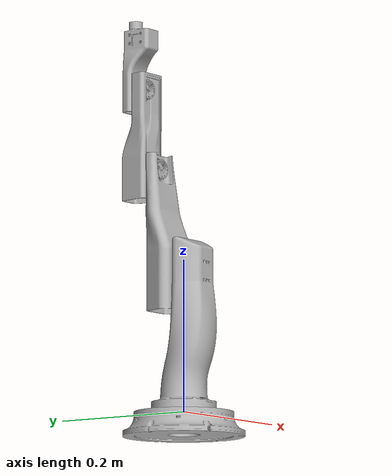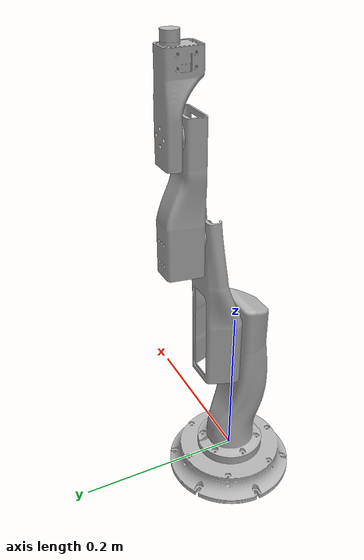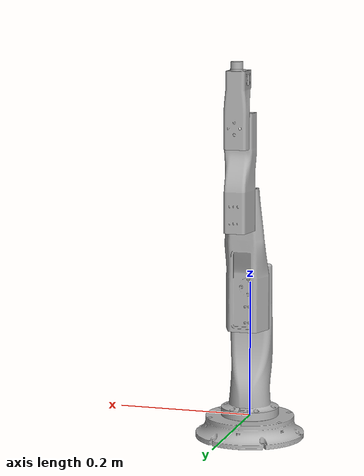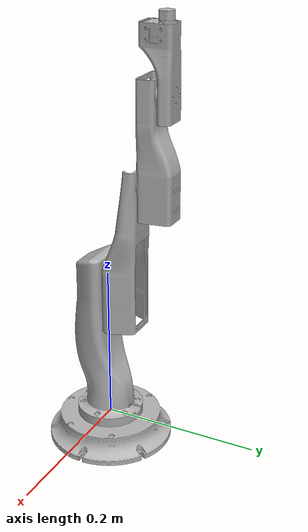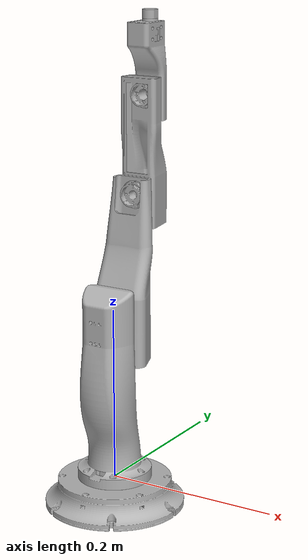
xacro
<?xml version="1.0" ?>
<robot name="myrobot" xmlns:xacro="http://www.ros.org/wiki/xacro">

<xacro:include filename="$(find myrobot_description)/urdf/materials.xacro" />
<xacro:include filename="$(find myrobot_description)/urdf/myrobot.trans" />
<xacro:include filename="$(find myrobot_description)/urdf/myrobot.gazebo" />
<link name="base_link">
  <inertial>
    <origin xyz="-2.412129279155798e-05 -6.726389239787194e-09 -0.01650625609341484" rpy="0 0 0"/>
    <mass value="2.9089077355455877"/>
    <inertia ixx="0.004719" iyy="0.004722" izz="0.00889" ixy="0.0" iyz="-0.0" ixz="0.0"/>
  </inertial>
  <visual>
    <origin xyz="0 0 0" rpy="0 0 0"/>
    <geometry>
      <mesh filename="file://$(find myrobot_description)/meshes/base_link.stl" scale="0.001 0.001 0.001"/>
    </geometry>
    <material name="silver"/>
  </visual>
  <collision>
    <origin xyz="0 0 0" rpy="0 0 0"/>
    <geometry>
      <mesh filename="file://$(find myrobot_description)/meshes/base_link.stl" scale="0.001 0.001 0.001"/>
    </geometry>
  </collision>
</link>

<link name="link2_1">
  <inertial>
    <origin xyz="2.1665809255954847e-05 -0.009091892046350344 0.10476261914902277" rpy="0 0 0"/>
    <mass value="0.9607225556465793"/>
    <inertia ixx="0.006282" iyy="0.006348" izz="0.000789" ixy="-0.0" iyz="0.000405" ixz="-2e-06"/>
  </inertial>
  <visual>
    <origin xyz="-0.0 -0.0 -0.0072" rpy="0 0 0"/>
    <geometry>
      <mesh filename="file://$(find myrobot_description)/meshes/link2_1.stl" scale="0.001 0.001 0.001"/>
    </geometry>
    <material name="silver"/>
  </visual>
  <collision>
    <origin xyz="-0.0 -0.0 -0.0072" rpy="0 0 0"/>
    <geometry>
      <mesh filename="file://$(find myrobot_description)/meshes/link2_1.stl" scale="0.001 0.001 0.001"/>
    </geometry>
  </collision>
</link>

<link name="link3_1">
  <inertial>
    <origin xyz="8.733976267216827e-06 0.024722520040826534 0.03608326973678133" rpy="0 0 0"/>
    <mass value="0.5477305594664718"/>
    <inertia ixx="0.001904" iyy="0.001989" izz="0.000344" ixy="-0.0" iyz="-0.00027" ixz="-0.0"/>
  </inertial>
  <visual>
    <origin xyz="-0.0 -0.002 -0.1942" rpy="0 0 0"/>
    <geometry>
      <mesh filename="file://$(find myrobot_description)/meshes/link3_1.stl" scale="0.001 0.001 0.001"/>
    </geometry>
    <material name="silver"/>
  </visual>
  <collision>
    <origin xyz="-0.0 -0.002 -0.1942" rpy="0 0 0"/>
    <geometry>
      <mesh filename="file://$(find myrobot_description)/meshes/link3_1.stl" scale="0.001 0.001 0.001"/>
    </geometry>
  </collision>
</link>

<link name="link4_1">
  <inertial>
    <origin xyz="1.7256094695911437e-05 0.017473863459912448 0.03288161968867287" rpy="0 0 0"/>
    <mass value="0.3354355047520062"/>
    <inertia ixx="0.000813" iyy="0.000817" izz="0.000138" ixy="1e-06" iyz="5e-06" ixz="2e-06"/>
  </inertial>
  <visual>
    <origin xyz="0.0 -0.048471 -0.3242" rpy="0 0 0"/>
    <geometry>
      <mesh filename="file://$(find myrobot_description)/meshes/link4_1.stl" scale="0.001 0.001 0.001"/>
    </geometry>
    <material name="silver"/>
  </visual>
  <collision>
    <origin xyz="0.0 -0.048471 -0.3242" rpy="0 0 0"/>
    <geometry>
      <mesh filename="file://$(find myrobot_description)/meshes/link4_1.stl" scale="0.001 0.001 0.001"/>
    </geometry>
  </collision>
</link>

<link name="link5_1">
  <inertial>
    <origin xyz="2.1629335735621904e-06 0.0021779469306734273 0.038801511461503846" rpy="0 0 0"/>
    <mass value="0.3513810710721947"/>
    <inertia ixx="0.000434" iyy="0.000426" izz="7.1e-05" ixy="0.0" iyz="3.3e-05" ixz="0.0"/>
  </inertial>
  <visual>
    <origin xyz="0.0 -0.072373 -0.4342" rpy="0 0 0"/>
    <geometry>
      <mesh filename="file://$(find myrobot_description)/meshes/link5_1.stl" scale="0.001 0.001 0.001"/>
    </geometry>
    <material name="silver"/>
  </visual>
  <collision>
    <origin xyz="0.0 -0.072373 -0.4342" rpy="0 0 0"/>
    <geometry>
      <mesh filename="file://$(find myrobot_description)/meshes/link5_1.stl" scale="0.001 0.001 0.001"/>
    </geometry>
  </collision>
</link>

<link name="wrist_1">
  <inertial>
    <origin xyz="-0.0001877346062586614 -2.1492034539549731e-07 0.005000000009597216" rpy="0 0 0"/>
    <mass value="0.019539229936272853"/>
    <inertia ixx="1e-06" iyy="1e-06" izz="1e-06" ixy="-0.0" iyz="0.0" ixz="-0.0"/>
  </inertial>
  <visual>
    <origin xyz="0.0 -0.078973 -0.5172" rpy="0 0 0"/>
    <geometry>
      <mesh filename="file://$(find myrobot_description)/meshes/wrist_1.stl" scale="0.001 0.001 0.001"/>
    </geometry>
    <material name="silver"/>
  </visual>
  <collision>
    <origin xyz="0.0 -0.078973 -0.5172" rpy="0 0 0"/>
    <geometry>
      <mesh filename="file://$(find myrobot_description)/meshes/wrist_1.stl" scale="0.001 0.001 0.001"/>
    </geometry>
  </collision>
</link>

<joint name="m1" type="revolute">
  <origin xyz="0.0 0.0 0.0072" rpy="0 0 0"/>
  <parent link="base_link"/>
  <child link="link2_1"/>
  <axis xyz="0.0 0.0 -1.0"/>
  <limit upper="2.792527" lower="-2.792527" effort="100" velocity="100"/>
</joint>

<joint name="m2" type="revolute">
  <origin xyz="0.0 0.002 0.187" rpy="0 0 0"/>
  <parent link="link2_1"/>
  <child link="link3_1"/>
  <axis xyz="0.0 1.0 0.0"/>
  <limit upper="2.792527" lower="-2.792527" effort="100" velocity="100"/>
</joint>

<joint name="m3" type="revolute">
  <origin xyz="-0.0 0.046471 0.13" rpy="0 0 0"/>
  <parent link="link3_1"/>
  <child link="link4_1"/>
  <axis xyz="0.0 1.0 -0.0"/>
  <limit upper="2.792527" lower="-2.792527" effort="100" velocity="100"/>
</joint>

<joint name="m4" type="revolute">
  <origin xyz="0.0 0.023902 0.11" rpy="0 0 0"/>
  <parent link="link4_1"/>
  <child link="link5_1"/>
  <axis xyz="-0.0 -1.0 0.0"/>
  <limit upper="2.094395" lower="-2.094395" effort="100" velocity="100"/>
</joint>

<joint name="m5" type="revolute">
  <origin xyz="0.0 0.0066 0.083" rpy="0 0 0"/>
  <parent link="link5_1"/>
  <child link="wrist_1"/>
  <axis xyz="-0.0 0.0 1.0"/>
  <limit upper="2.792527" lower="-2.792527" effort="100" velocity="100"/>
</joint>

</robot>

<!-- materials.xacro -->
<robot name="myrobot" xmlns:xacro="http://www.ros.org/wiki/xacro" >

<material name="silver">
  <color rgba="0.700 0.700 0.700 1.000"/>
</material>

</robot>

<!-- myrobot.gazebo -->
<robot name="myrobot" xmlns:xacro="http://www.ros.org/wiki/xacro" >

<xacro:property name="body_color" value="Gazebo/Silver" />

<gazebo>
  <plugin name="control" filename="libgazebo_ros_control.so"/>
</gazebo>
<gazebo reference="base_link">
  <material>${body_color}</material>
  <mu1>0.2</mu1>
  <mu2>0.2</mu2>
  <self_collide>true</self_collide>
  <gravity>true</gravity>
</gazebo>

<gazebo reference="link2_1">
  <material>${body_color}</material>
  <mu1>0.2</mu1>
  <mu2>0.2</mu2>
  <self_collide>true</self_collide>
</gazebo>

<gazebo reference="link3_1">
  <material>${body_color}</material>
  <mu1>0.2</mu1>
  <mu2>0.2</mu2>
  <self_collide>true</self_collide>
</gazebo>

<gazebo reference="link4_1">
  <material>${body_color}</material>
  <mu1>0.2</mu1>
  <mu2>0.2</mu2>
  <self_collide>true</self_collide>
</gazebo>

<gazebo reference="link5_1">
  <material>${body_color}</material>
  <mu1>0.2</mu1>
  <mu2>0.2</mu2>
  <self_collide>true</self_collide>
</gazebo>

<gazebo reference="wrist_1">
  <material>${body_color}</material>
  <mu1>0.2</mu1>
  <mu2>0.2</mu2>
  <self_collide>true</self_collide>
</gazebo>

</robot>
